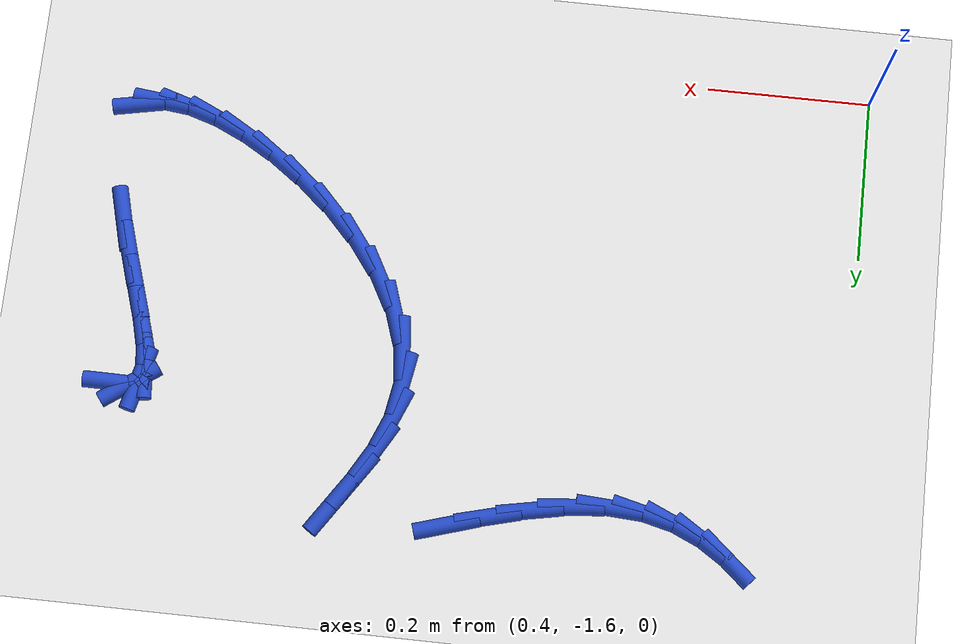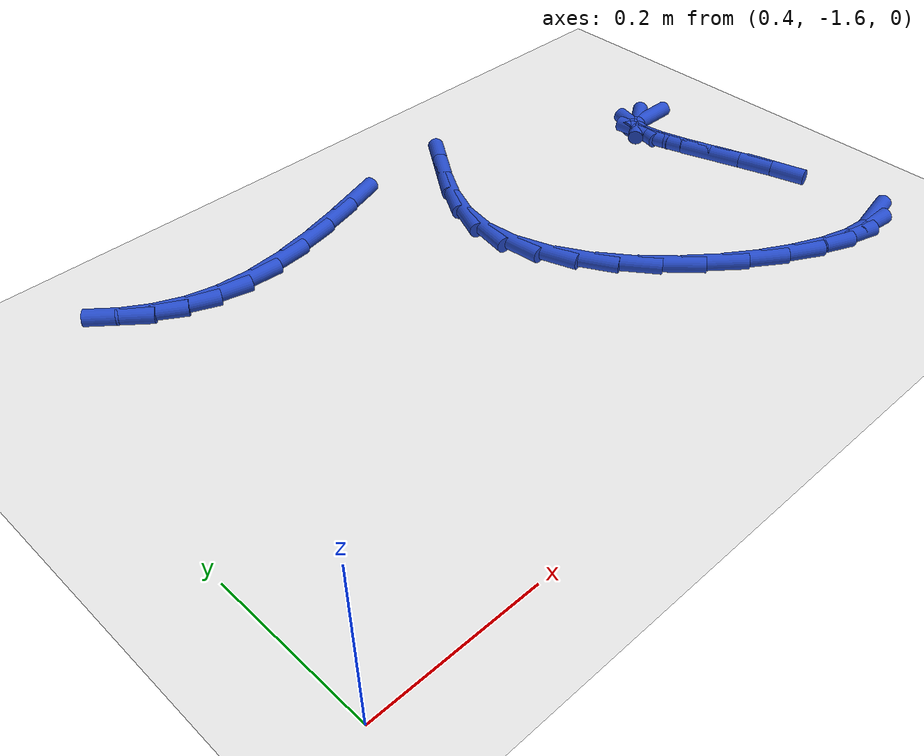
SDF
<sdf version="1.6">
 <world name="default">
  <model name="ground_plane">
   <static>1</static>
   <link name="link">
    <collision name="collision">
     <geometry><plane><normal>0 0 1</normal><size>100 100</size></plane></geometry>
     <surface><friction><ode><mu>100</mu><mu2>50</mu2></ode></friction></surface>
    </collision>
    <visual name="visual">
     <cast_shadows>0</cast_shadows>
     <geometry><plane><normal>0 0 1</normal><size>100 100</size></plane></geometry>
     <material>
      <script><uri>file://media/materials/scripts/gazebo.material</uri><name>Gazebo/WhiteGlow</name></script>
     </material>
    </visual>
   </link>
  </model>
  <model name="line">
   <link name="link_203">
    <pose>1.2771591770188873 -1.1520027871084118 0.01 0 1.57 -0.006964294949347552</pose>
    <collision name="collision">
     <geometry><cylinder><radius>0.01</radius><length>0.08</length></cylinder></geometry>
    </collision>
    <visual name="visual">
     <material>
      <script><name>Gazebo/Blue</name><uri>file://media/materials/scripts/gazebo.material</uri></script>
     </material>
     <geometry><cylinder><radius>0.01</radius><length>0.08</length></cylinder></geometry>
    </visual>
   </link>
   <link name="link_204">
    <pose>1.261085518848315 -1.1518908436021853 0.01 0 1.57 0.6223783892665434</pose>
    <collision name="collision">
     <geometry><cylinder><radius>0.01</radius><length>0.08</length></cylinder></geometry>
    </collision>
    <visual name="visual">
     <material>
      <script><name>Gazebo/Blue</name><uri>file://media/materials/scripts/gazebo.material</uri></script>
     </material>
     <geometry><cylinder><radius>0.01</radius><length>0.08</length></cylinder></geometry>
    </visual>
   </link>
   <link name="link_205">
    <pose>1.2509147904218407 -1.1591883991605676 0.01 0 1.57 1.3355379927580404</pose>
    <collision name="collision">
     <geometry><cylinder><radius>0.01</radius><length>0.08</length></cylinder></geometry>
    </collision>
    <visual name="visual">
     <material>
      <script><name>Gazebo/Blue</name><uri>file://media/materials/scripts/gazebo.material</uri></script>
     </material>
     <geometry><cylinder><radius>0.01</radius><length>0.08</length></cylinder></geometry>
    </visual>
   </link>
   <link name="link_206">
    <pose>1.2471470357071204 -1.1749072311162436 0.01 0 1.57 -1.4531669030524894</pose>
    <collision name="collision">
     <geometry><cylinder><radius>0.01</radius><length>0.08</length></cylinder></geometry>
    </collision>
    <visual name="visual">
     <material>
      <script><name>Gazebo/Blue</name><uri>file://media/materials/scripts/gazebo.material</uri></script>
     </material>
     <geometry><cylinder><radius>0.01</radius><length>0.08</length></cylinder></geometry>
    </visual>
   </link>
   <link name="link_207">
    <pose>1.2500884618012442 -1.1997976619702535 0.01 0 1.57 -1.3188389235085196</pose>
    <collision name="collision">
     <geometry><cylinder><radius>0.01</radius><length>0.08</length></cylinder></geometry>
    </collision>
    <visual name="visual">
     <material>
      <script><name>Gazebo/Blue</name><uri>file://media/materials/scripts/gazebo.material</uri></script>
     </material>
     <geometry><cylinder><radius>0.01</radius><length>0.08</length></cylinder></geometry>
    </visual>
   </link>
   <link name="link_208">
    <pose>1.2585207899495272 -1.2325537274575544 0.01 0 1.57 -1.2678708928904163</pose>
    <collision name="collision">
     <geometry><cylinder><radius>0.01</radius><length>0.08</length></cylinder></geometry>
    </collision>
    <visual name="visual">
     <material>
      <script><name>Gazebo/Blue</name><uri>file://media/materials/scripts/gazebo.material</uri></script>
     </material>
     <geometry><cylinder><radius>0.01</radius><length>0.08</length></cylinder></geometry>
    </visual>
   </link>
   <link name="link_209">
    <pose>1.2705047637563651 -1.2708969801772707 0.01 0 1.57 -1.2553258103301985</pose>
    <collision name="collision">
     <geometry><cylinder><radius>0.01</radius><length>0.08</length></cylinder></geometry>
    </collision>
    <visual name="visual">
     <material>
      <script><name>Gazebo/Blue</name><uri>file://media/materials/scripts/gazebo.material</uri></script>
     </material>
     <geometry><cylinder><radius>0.01</radius><length>0.08</length></cylinder></geometry>
    </visual>
   </link>
   <link name="link_210">
    <pose>1.2840968352740076 -1.3125431841133883 0.01 0 1.57 -1.2695386698261004</pose>
    <collision name="collision">
     <geometry><cylinder><radius>0.01</radius><length>0.08</length></cylinder></geometry>
    </collision>
    <visual name="visual">
     <material>
      <script><name>Gazebo/Blue</name><uri>file://media/materials/scripts/gazebo.material</uri></script>
     </material>
     <geometry><cylinder><radius>0.01</radius><length>0.08</length></cylinder></geometry>
    </visual>
   </link>
   <link name="link_211">
    <pose>1.2973534565547042 -1.355208103249891 0.01 0 1.57 -1.3115975208067872</pose>
    <collision name="collision">
     <geometry><cylinder><radius>0.01</radius><length>0.08</length></cylinder></geometry>
    </collision>
    <visual name="visual">
     <material>
      <script><name>Gazebo/Blue</name><uri>file://media/materials/scripts/gazebo.material</uri></script>
     </material>
     <geometry><cylinder><radius>0.01</radius><length>0.08</length></cylinder></geometry>
    </visual>
   </link>
   <link name="link_216">
    <pose>1.2914078123973312 -1.5045785575548662 0.01 0 1.57 0.19807233784426667</pose>
    <collision name="collision">
     <geometry><cylinder><radius>0.01</radius><length>0.08</length></cylinder></geometry>
    </collision>
    <visual name="visual">
     <material>
      <script><name>Gazebo/Blue</name><uri>file://media/materials/scripts/gazebo.material</uri></script>
     </material>
     <geometry><cylinder><radius>0.01</radius><length>0.08</length></cylinder></geometry>
    </visual>
   </link>
   <link name="link_217">
    <pose>1.2666594290273947 -1.5095456557173212 0.01 0 1.57 -0.1109426887798278</pose>
    <collision name="collision">
     <geometry><cylinder><radius>0.01</radius><length>0.08</length></cylinder></geometry>
    </collision>
    <visual name="visual">
     <material>
      <script><name>Gazebo/Blue</name><uri>file://media/materials/scripts/gazebo.material</uri></script>
     </material>
     <geometry><cylinder><radius>0.01</radius><length>0.08</length></cylinder></geometry>
    </visual>
   </link>
   <link name="link_218">
    <pose>1.2355521729077348 -1.5060803038958845 0.01 0 1.57 -0.3002052906514102</pose>
    <collision name="collision">
     <geometry><cylinder><radius>0.01</radius><length>0.08</length></cylinder></geometry>
    </collision>
    <visual name="visual">
     <material>
      <script><name>Gazebo/Blue</name><uri>file://media/materials/scripts/gazebo.material</uri></script>
     </material>
     <geometry><cylinder><radius>0.01</radius><length>0.08</length></cylinder></geometry>
    </visual>
   </link>
   <link name="link_219">
    <pose>1.1997279904089453 -1.4949905270230854 0.01 0 1.57 -0.43140525117621087</pose>
    <collision name="collision">
     <geometry><cylinder><radius>0.01</radius><length>0.08</length></cylinder></geometry>
    </collision>
    <visual name="visual">
     <material>
      <script><name>Gazebo/Blue</name><uri>file://media/materials/scripts/gazebo.material</uri></script>
     </material>
     <geometry><cylinder><radius>0.01</radius><length>0.08</length></cylinder></geometry>
    </visual>
   </link>
   <link name="link_220">
    <pose>1.1608288279016226 -1.4770843500314526 0.01 0 1.57 -0.5352117807206317</pose>
    <collision name="collision">
     <geometry><cylinder><radius>0.01</radius><length>0.08</length></cylinder></geometry>
    </collision>
    <visual name="visual">
     <material>
      <script><name>Gazebo/Blue</name><uri>file://media/materials/scripts/gazebo.material</uri></script>
     </material>
     <geometry><cylinder><radius>0.01</radius><length>0.08</length></cylinder></geometry>
    </visual>
   </link>
   <link name="link_221">
    <pose>1.1204966317563607 -1.4531697978535143 0.01 0 1.57 -0.6277250025703669</pose>
    <collision name="collision">
     <geometry><cylinder><radius>0.01</radius><length>0.08</length></cylinder></geometry>
    </collision>
    <visual name="visual">
     <material>
      <script><name>Gazebo/Blue</name><uri>file://media/materials/scripts/gazebo.material</uri></script>
     </material>
     <geometry><cylinder><radius>0.01</radius><length>0.08</length></cylinder></geometry>
    </visual>
   </link>
   <link name="link_222">
    <pose>1.0803733483437563 -1.4240548954218 0.01 0 1.57 -0.719108977776082</pose>
    <collision name="collision">
     <geometry><cylinder><radius>0.01</radius><length>0.08</length></cylinder></geometry>
    </collision>
    <visual name="visual">
     <material>
      <script><name>Gazebo/Blue</name><uri>file://media/materials/scripts/gazebo.material</uri></script>
     </material>
     <geometry><cylinder><radius>0.01</radius><length>0.08</length></cylinder></geometry>
    </visual>
   </link>
   <link name="link_223">
    <pose>1.042100924034403 -1.3905476676688366 0.01 0 1.57 -0.8175544943805952</pose>
    <collision name="collision">
     <geometry><cylinder><radius>0.01</radius><length>0.08</length></cylinder></geometry>
    </collision>
    <visual name="visual">
     <material>
      <script><name>Gazebo/Blue</name><uri>file://media/materials/scripts/gazebo.material</uri></script>
     </material>
     <geometry><cylinder><radius>0.01</radius><length>0.08</length></cylinder></geometry>
    </visual>
   </link>
   <link name="link_224">
    <pose>1.0073213051988976 -1.353456139527155 0.01 0 1.57 -0.9314172512500303</pose>
    <collision name="collision">
     <geometry><cylinder><radius>0.01</radius><length>0.08</length></cylinder></geometry>
    </collision>
    <visual name="visual">
     <material>
      <script><name>Gazebo/Blue</name><uri>file://media/materials/scripts/gazebo.material</uri></script>
     </material>
     <geometry><cylinder><radius>0.01</radius><length>0.08</length></cylinder></geometry>
    </visual>
   </link>
   <link name="link_225">
    <pose>0.9776764382078345 -1.3135883359292824 0.01 0 1.57 -1.0705565240018924</pose>
    <collision name="collision">
     <geometry><cylinder><radius>0.01</radius><length>0.08</length></cylinder></geometry>
    </collision>
    <visual name="visual">
     <material>
      <script><name>Gazebo/Blue</name><uri>file://media/materials/scripts/gazebo.material</uri></script>
     </material>
     <geometry><cylinder><radius>0.01</radius><length>0.08</length></cylinder></geometry>
    </visual>
   </link>
   <link name="link_226">
    <pose>0.9548082694318083 -1.2717522818077462 0.01 0 1.57 -1.2465897199031852</pose>
    <collision name="collision">
     <geometry><cylinder><radius>0.01</radius><length>0.08</length></cylinder></geometry>
    </collision>
    <visual name="visual">
     <material>
      <script><name>Gazebo/Blue</name><uri>file://media/materials/scripts/gazebo.material</uri></script>
     </material>
     <geometry><cylinder><radius>0.01</radius><length>0.08</length></cylinder></geometry>
    </visual>
   </link>
   <link name="link_227">
    <pose>0.9403587452414163 -1.228756002095078 0.01 0 1.57 -1.4698924970147598</pose>
    <collision name="collision">
     <geometry><cylinder><radius>0.01</radius><length>0.08</length></cylinder></geometry>
    </collision>
    <visual name="visual">
     <material>
      <script><name>Gazebo/Blue</name><uri>file://media/materials/scripts/gazebo.material</uri></script>
     </material>
     <geometry><cylinder><radius>0.01</radius><length>0.08</length></cylinder></geometry>
    </visual>
   </link>
   <link name="link_228">
    <pose>0.9359698120072522 -1.185407521723805 0.01 0 1.57 1.4071174884328517</pose>
    <collision name="collision">
     <geometry><cylinder><radius>0.01</radius><length>0.08</length></cylinder></geometry>
    </collision>
    <visual name="visual">
     <material>
      <script><name>Gazebo/Blue</name><uri>file://media/materials/scripts/gazebo.material</uri></script>
     </material>
     <geometry><cylinder><radius>0.01</radius><length>0.08</length></cylinder></geometry>
    </visual>
   </link>
   <link name="link_229">
    <pose>0.9430488577693934 -1.1425448343021025 0.01 0 1.57 1.1879910488657388</pose>
    <collision name="collision">
     <geometry><cylinder><radius>0.01</radius><length>0.08</length></cylinder></geometry>
    </collision>
    <visual name="visual">
     <material>
      <script><name>Gazebo/Blue</name><uri>file://media/materials/scripts/gazebo.material</uri></script>
     </material>
     <geometry><cylinder><radius>0.01</radius><length>0.08</length></cylinder></geometry>
    </visual>
   </link>
   <link name="link_230">
    <pose>0.9596002140116789 -1.1014407297547624 0.01 0 1.57 1.0537835338312704</pose>
    <collision name="collision">
     <geometry><cylinder><radius>0.01</radius><length>0.08</length></cylinder></geometry>
    </collision>
    <visual name="visual">
     <material>
      <script><name>Gazebo/Blue</name><uri>file://media/materials/scripts/gazebo.material</uri></script>
     </material>
     <geometry><cylinder><radius>0.01</radius><length>0.08</length></cylinder></geometry>
    </visual>
   </link>
   <link name="link_231">
    <pose>0.9810620197231013 -1.0636958712070497 0.01 0 1.57 0.9849908048561022</pose>
    <collision name="collision">
     <geometry><cylinder><radius>0.01</radius><length>0.08</length></cylinder></geometry>
    </collision>
    <visual name="visual">
     <material>
      <script><name>Gazebo/Blue</name><uri>file://media/materials/scripts/gazebo.material</uri></script>
     </material>
     <geometry><cylinder><radius>0.01</radius><length>0.08</length></cylinder></geometry>
    </visual>
   </link>
   <link name="link_232">
    <pose>1.0028094193823474 -1.0309189703666137 0.01 0 1.57 0.9843459464434293</pose>
    <collision name="collision">
     <geometry><cylinder><radius>0.01</radius><length>0.08</length></cylinder></geometry>
    </collision>
    <visual name="visual">
     <material>
      <script><name>Gazebo/Blue</name><uri>file://media/materials/scripts/gazebo.material</uri></script>
     </material>
     <geometry><cylinder><radius>0.01</radius><length>0.08</length></cylinder></geometry>
    </visual>
   </link>
   <link name="link_240">
    <pose>0.8640352312346221 -1.0220822516146604 0.01 0 1.57 0.30061476695406825</pose>
    <collision name="collision">
     <geometry><cylinder><radius>0.01</radius><length>0.08</length></cylinder></geometry>
    </collision>
    <visual name="visual">
     <material>
      <script><name>Gazebo/Blue</name><uri>file://media/materials/scripts/gazebo.material</uri></script>
     </material>
     <geometry><cylinder><radius>0.01</radius><length>0.08</length></cylinder></geometry>
    </visual>
   </link>
   <link name="link_241">
    <pose>0.8163293305788161 -1.0368715565007949 0.01 0 1.57 0.2585095781846248</pose>
    <collision name="collision">
     <geometry><cylinder><radius>0.01</radius><length>0.08</length></cylinder></geometry>
    </collision>
    <visual name="visual">
     <material>
      <script><name>Gazebo/Blue</name><uri>file://media/materials/scripts/gazebo.material</uri></script>
     </material>
     <geometry><cylinder><radius>0.01</radius><length>0.08</length></cylinder></geometry>
    </visual>
   </link>
   <link name="link_242">
    <pose>0.7675889857380146 -1.0497597844686402 0.01 0 1.57 0.1918438064030874</pose>
    <collision name="collision">
     <geometry><cylinder><radius>0.01</radius><length>0.08</length></cylinder></geometry>
    </collision>
    <visual name="visual">
     <material>
      <script><name>Gazebo/Blue</name><uri>file://media/materials/scripts/gazebo.material</uri></script>
     </material>
     <geometry><cylinder><radius>0.01</radius><length>0.08</length></cylinder></geometry>
    </visual>
   </link>
   <link name="link_243">
    <pose>0.7195978704176311 -1.05908121978697 0.01 0 1.57 0.08970771942524154</pose>
    <collision name="collision">
     <geometry><cylinder><radius>0.01</radius><length>0.08</length></cylinder></geometry>
    </collision>
    <visual name="visual">
     <material>
      <script><name>Gazebo/Blue</name><uri>file://media/materials/scripts/gazebo.material</uri></script>
     </material>
     <geometry><cylinder><radius>0.01</radius><length>0.08</length></cylinder></geometry>
    </visual>
   </link>
   <link name="link_244">
    <pose>0.6741396583230826 -1.0631701467245558 0.01 0 1.57 -0.06200022874290291</pose>
    <collision name="collision">
     <geometry><cylinder><radius>0.01</radius><length>0.08</length></cylinder></geometry>
    </collision>
    <visual name="visual">
     <material>
      <script><name>Gazebo/Blue</name><uri>file://media/materials/scripts/gazebo.material</uri></script>
     </material>
     <geometry><cylinder><radius>0.01</radius><length>0.08</length></cylinder></geometry>
    </visual>
   </link>
   <link name="link_245">
    <pose>0.6327739576048871 -1.0606021725191401 0.01 0 1.57 -0.23942454810068575</pose>
    <collision name="collision">
     <geometry><cylinder><radius>0.01</radius><length>0.08</length></cylinder></geometry>
    </collision>
    <visual name="visual">
     <material>
      <script><name>Gazebo/Blue</name><uri>file://media/materials/scripts/gazebo.material</uri></script>
     </material>
     <geometry><cylinder><radius>0.01</radius><length>0.08</length></cylinder></geometry>
    </visual>
   </link>
   <link name="link_246">
    <pose>0.5955984894448888 -1.051527385161401 0.01 0 1.57 -0.4162970437048096</pose>
    <collision name="collision">
     <geometry><cylinder><radius>0.01</radius><length>0.08</length></cylinder></geometry>
    </collision>
    <visual name="visual">
     <material>
      <script><name>Gazebo/Blue</name><uri>file://media/materials/scripts/gazebo.material</uri></script>
     </material>
     <geometry><cylinder><radius>0.01</radius><length>0.08</length></cylinder></geometry>
    </visual>
   </link>
   <link name="link_247">
    <pose>0.5621246775555384 -1.0367273264416856 0.01 0 1.57 -0.5780366083753459</pose>
    <collision name="collision">
     <geometry><cylinder><radius>0.01</radius><length>0.08</length></cylinder></geometry>
    </collision>
    <visual name="visual">
     <material>
      <script><name>Gazebo/Blue</name><uri>file://media/materials/scripts/gazebo.material</uri></script>
     </material>
     <geometry><cylinder><radius>0.01</radius><length>0.08</length></cylinder></geometry>
    </visual>
   </link>
   <link name="link_248">
    <pose>0.5318623732669715 -1.0169852316367345 0.01 0 1.57 -0.7147554227292938</pose>
    <collision name="collision">
     <geometry><cylinder><radius>0.01</radius><length>0.08</length></cylinder></geometry>
    </collision>
    <visual name="visual">
     <material>
      <script><name>Gazebo/Blue</name><uri>file://media/materials/scripts/gazebo.material</uri></script>
     </material>
     <geometry><cylinder><radius>0.01</radius><length>0.08</length></cylinder></geometry>
    </visual>
   </link>
  </model>
 </world>
</sdf>
